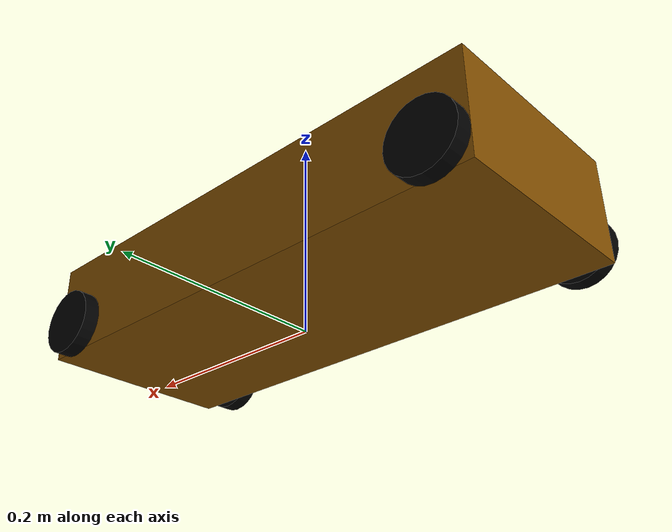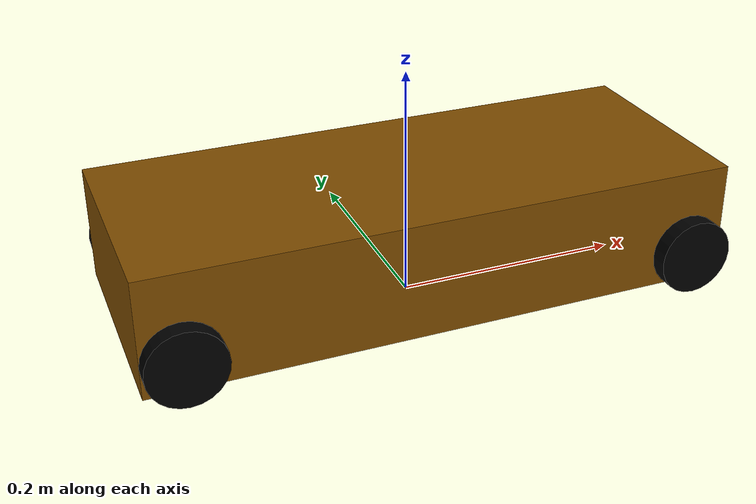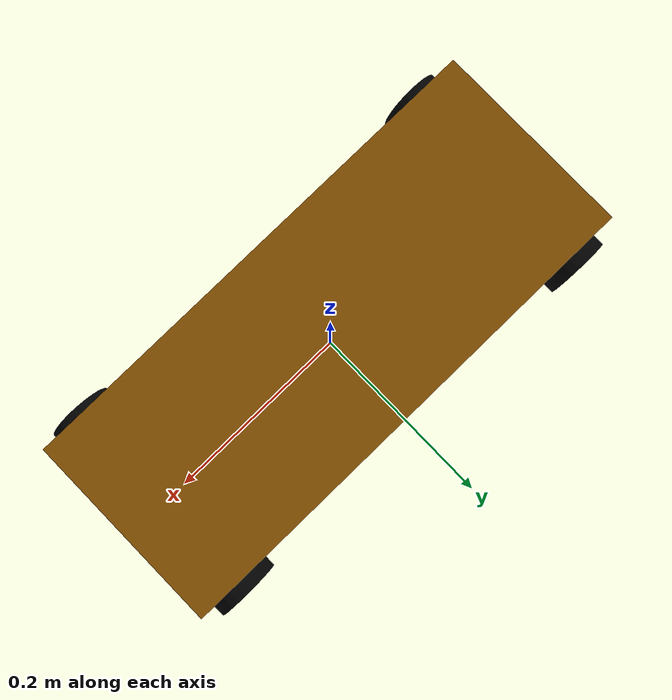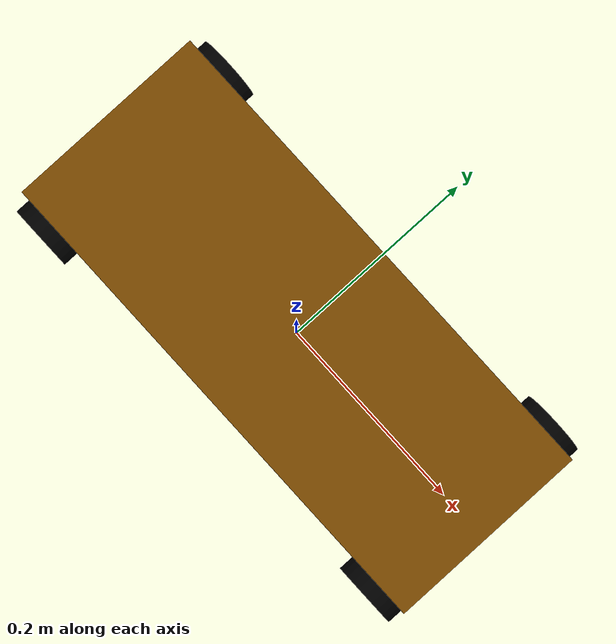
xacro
<robot name="my_base" xmlns:xacro="http://www.ros.org/wiki/xacro">
    <!-- 封装变量、常量 -->
    <xacro:property name="PI" value="3.1415927"/>
    <!-- 宏:黑色设置 -->
    <material name="black">
        <color rgba="0.0 0.0 0.0 1.0" />
    </material>
    <!-- 底盘属性 -->
    <xacro:property name="vehicle_mass" value="0.5" /> <!-- 质量  -->
    <xacro:property name="vehicle_length" value="0.5" /> <!-- 车长  -->
    <xacro:property name="vehicle_width" value="0.2" /> <!-- 车宽  -->
    <xacro:property name="vehicle_height" value="0.1" /> <!-- 车高  -->
    <xacro:property name="base_footprint_radius" value="0.001" /> <!-- base_footprint 半径  -->
    <xacro:property name="base_link_radius" value="0.1" /> <!-- base_link 半径 -->
    <xacro:property name="base_link_length" value="0.08" /> <!-- base_link 长 -->
    <xacro:property name="earth_space" value="0.015" /> <!-- 离地间距 -->

    <!-- 底盘 -->
    <link name="base_link">
      <visual>
        <geometry>
          <box size="${vehicle_length} ${vehicle_width} ${vehicle_height}" />
        </geometry>
        <origin xyz="0 0 0" rpy="0 0 0" />
        <material name="yellow">
          <color rgba="0.5 0.3 0.0 1" />
        </material>
      </visual>

      <collision>
        <geometry>
            <box size="0.5 0.2 0.1" />
        </geometry>
        <origin xyz="0.0 0.0 0.0" rpy="0.0 0.0 0.0" />
      </collision>
      <xacro:Box_inertial_matrix m="${vehicle_mass}" l="${vehicle_length}" w="${vehicle_width}" h="${vehicle_height}"/>
    </link>
    <gazebo reference="base_link">
      <material>Gazebo/Blue</material>
    </gazebo>

    <!-- 基底，不能带origin设置偏移 -->
    <link name="base_footprint">
      <visual>
        <geometry>
          <sphere radius="${base_footprint_radius}" />
        </geometry>
        <origin xyz="0 0 0" rpy="0 0 0" />
      </visual>
    </link>

    <joint name="base_link2base_footprint" type="fixed">
      <parent link="base_footprint" />
      <child link="base_link" />
      <origin xyz="0 0 ${earth_space + vehicle_height / 2 }" />
    </joint>

    <!-- 轮子属性 -->
    <xacro:property name="wheel_mass" value="0.05" /><!-- 车轮质量 -->
    <xacro:property name="wheel_radius" value="0.0325" /><!-- 半径 -->
    <xacro:property name="wheel_length" value="0.015" /><!-- 宽度 -->
    <!-- 驱动轮宏实现 -->
    <xacro:macro name="add_wheels" params="name flagx flagy">
      <link name="${name}_wheel">
        <visual>
          <geometry>
            <cylinder radius="${wheel_radius}" length="${wheel_length}" />
          </geometry>
          <origin xyz="0.0 0.0 0.0" rpy="${PI / 2} 0.0 0.0" />
          <material name="black" />
        </visual>

        <collision>
          <geometry>
              <cylinder radius="${wheel_radius}" length="${wheel_length}" />
          </geometry>
          <origin xyz="0.0 0.0 0.0" rpy="${PI / 2} 0.0 0.0" />
        </collision>
        <xacro:cylinder_inertial_matrix m="${vehicle_mass}" r="${wheel_radius}" h="${wheel_length}"/>
      </link>
      <gazebo reference="${name}_wheel">
        <material>Gazebo/Black</material>
        <mu1>10000000</mu1>
        <mu2>10000000</mu2>
        <kp>10000000</kp>
        <kd>1</kd>
      </gazebo>

      <joint name="${name}_wheel2base_link" type="continuous">
        <parent link="base_link" />
        <child link="${name}_wheel" />
        <origin xyz="${flagx * (vehicle_length / 2 - wheel_radius)} ${flagy * (vehicle_width / 2 + wheel_length / 2)} ${-(earth_space + base_link_length / 2 - wheel_radius) }" />
        <axis xyz="0 1 0" />
      </joint>
    </xacro:macro>

    <xacro:add_wheels name="left_front" flagx="1" flagy="1"/>
    <xacro:add_wheels name="left_back" flagx="-1" flagy="1"/>
    <xacro:add_wheels name="right_front" flagx="1" flagy="-1"/>
    <xacro:add_wheels name="right_back" flagx="-1" flagy="-1"/>

</robot>
